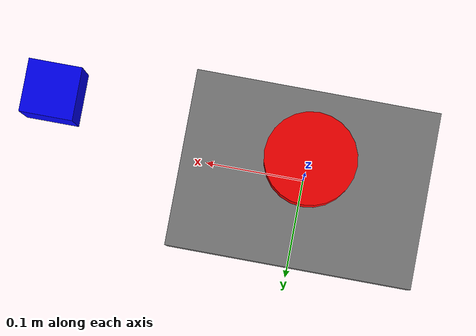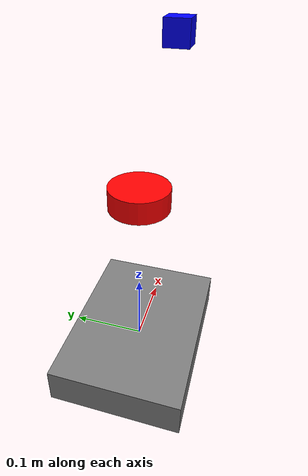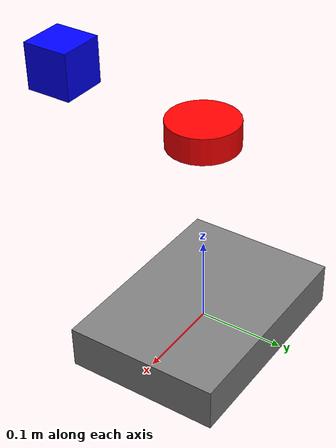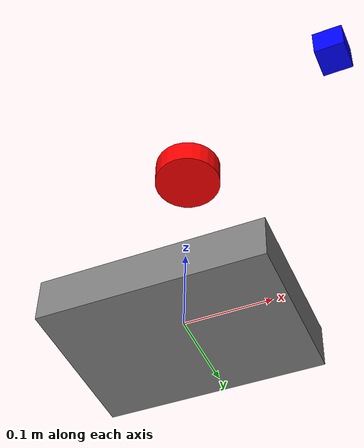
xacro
<?xml version="1.0"?>
<!-- Minimal Robotaxi description -->
<robot xmlns:xacro="http://www.ros.org/wiki/xacro" name="robotaxi">
  <link name="base_link">
    <visual>
      <origin xyz="0 0 0"/>
      <geometry>
        <box size="0.25 0.18 0.05"/>
      </geometry>
      <material name="gray"><color rgba="0.5 0.5 0.5 1"/></material>
    </visual>
  </link>

  <link name="camera_link">
    <visual>
      <origin xyz="0.1 0 0.2"/>
      <geometry><box size="0.04 0.04 0.04"/></geometry>
      <material name="blue"><color rgba="0 0 1 1"/></material>
    </visual>
  </link>
  <joint name="camera_joint" type="fixed">
    <parent link="base_link"/>
    <child link="camera_link"/>
    <origin xyz="0.1 0 0.2" rpy="0 0 0"/>
  </joint>

  <link name="laser">
    <visual>
      <origin xyz="0 0 0.12"/>
      <geometry><cylinder length="0.03" radius="0.04"/></geometry>
      <material name="red"><color rgba="1 0 0 1"/></material>
    </visual>
  </link>
  <joint name="laser_joint" type="fixed">
    <parent link="base_link"/>
    <child link="laser"/>
    <origin xyz="0 0 0.12" rpy="0 0 0"/>
  </joint>
</robot>
